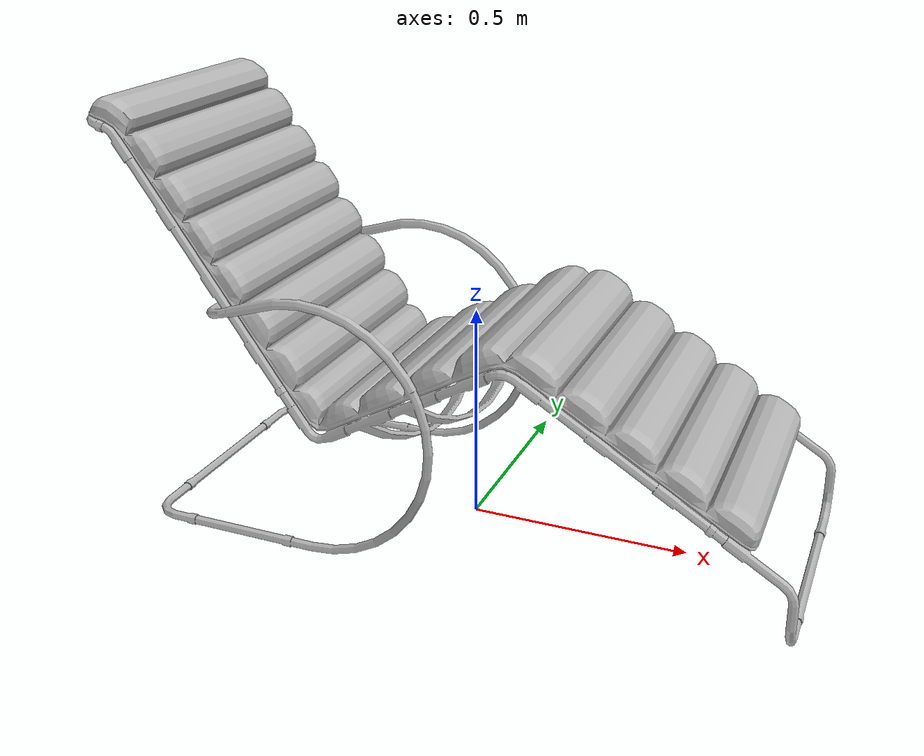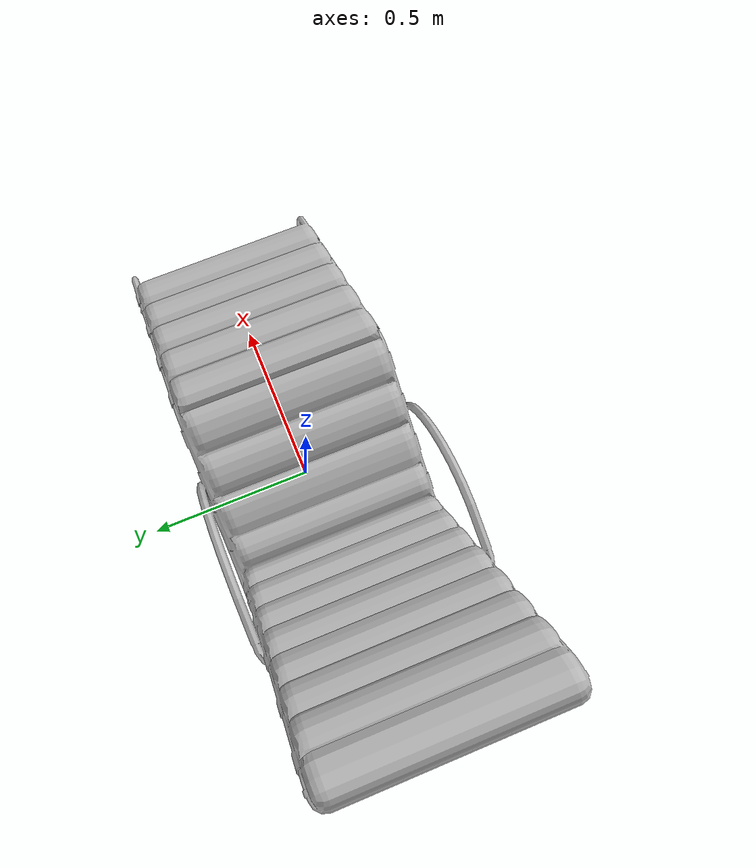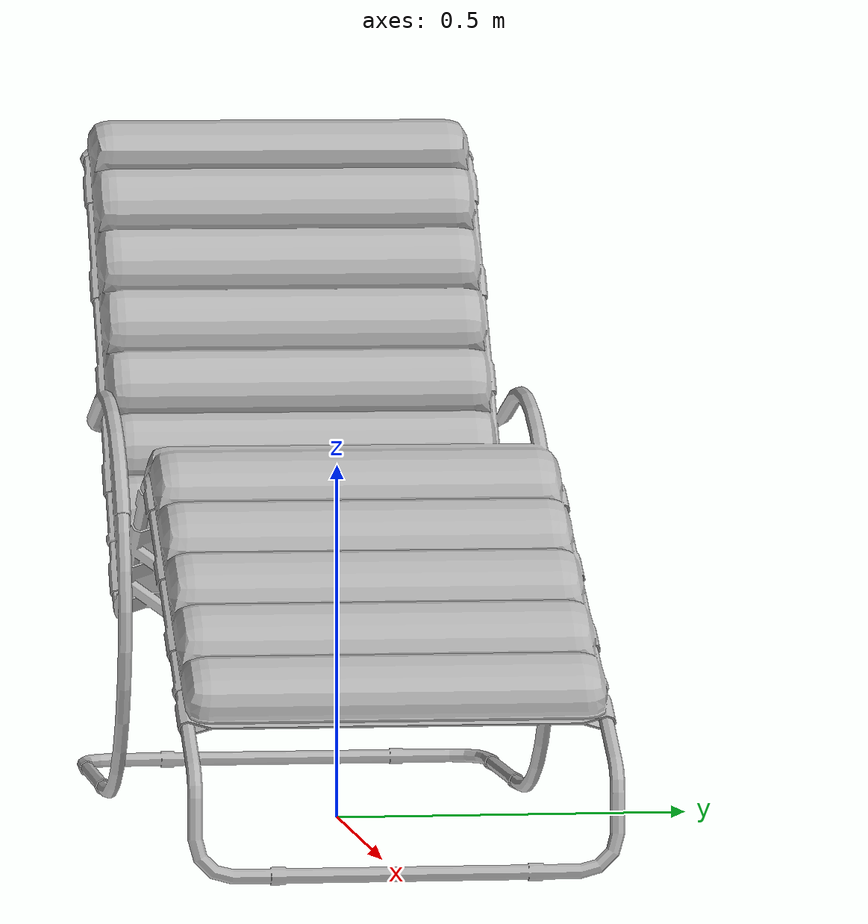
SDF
<?xml version='1.0'?>
<sdf version='1.4'>
  <model name='s__2195'>
    <pose>0 0 0 0 0 0</pose>
    <static>true</static>
    <link name='link'>
      <collision name='collision'>
        <pose>0 0 0 0 0 0</pose>
        <geometry>
          <box>
            <size>1.54968 0.63 2</size>
          </box>
        </geometry>
      </collision>
      <visual name='visual'>
        <pose>0 0 0 0 0 0</pose>
        <geometry>
          <mesh><uri>model://s__2195/s__2195.dae</uri></mesh>
        </geometry>
      </visual>
    </link>
  </model>
</sdf>
